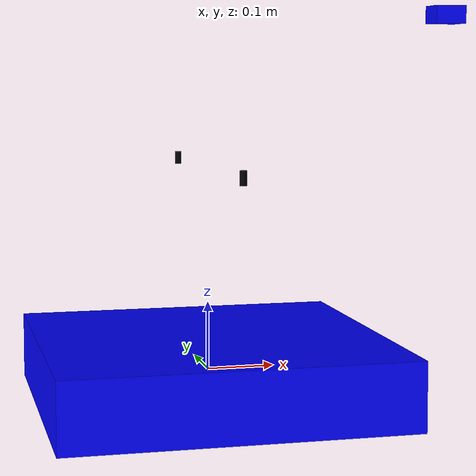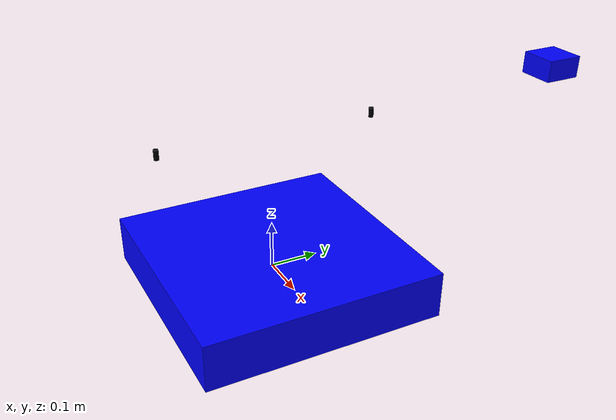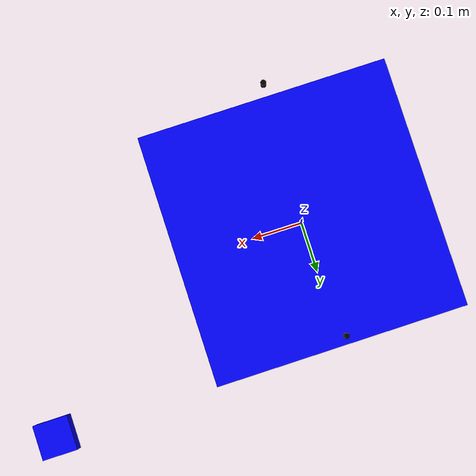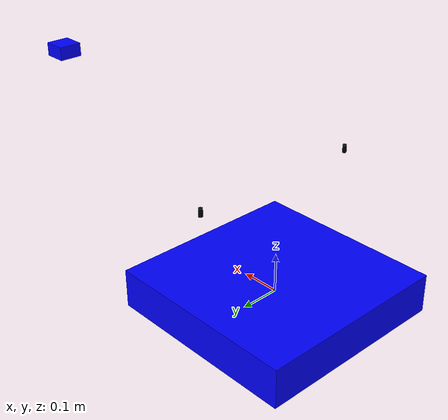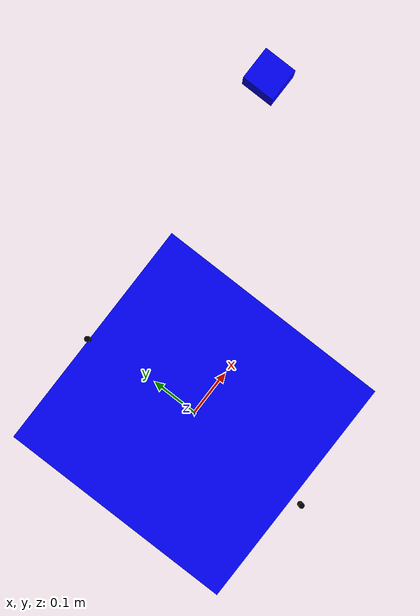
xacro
<?xml version="1.0"?>
<!-- Basic differential drive mobile base -->
<robot xmlns:xacro="http://www.ros.org/wiki/xacro" name="diffdrive_robot">
	<xacro:arg name="prefix" default="" />
	<xacro:arg name="use_mock_hardware" default="false" />

	<xacro:include filename="$(find nuri_humble_desc)/urdf/diffbot_description.urdf.xacro" />
	<xacro:include filename="$(find nuri_humble_desc)/urdf/diffbot.ros2_control.xacro" />
	<xacro:diffbot prefix="$(arg prefix)" />
	<xacro:diffbot_ros2_control
	name="DiffBot" prefix="$(arg prefix)" use_mock_hardware="$(arg use_mock_hardware)"/>

</robot>

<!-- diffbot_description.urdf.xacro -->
<robot xmlns:xacro="http://www.ros.org/wiki/xacro">
  <xacro:macro name="diffbot" params="prefix">

    <xacro:property name="wheel_separation" value="0.45" />
    <xacro:property name="wheel_radius" value="0.005" />

    <link name="${prefix}base_footprint" />
    <!-- 기본 링크 -->
    <link name="${prefix}base_link">
        <visual>
            <geometry>
                <box size="0.5 0.5 0.1" />
            </geometry>
            <material name="blue">
                <color rgba="0 0 1 1" />
            </material>
        </visual>
    </link>
    <joint name="${prefix}base_joint" type="fixed">
        <parent link="${prefix}base_footprint" />
        <child link="${prefix}base_link" />
        <origin xyz="0 0 0" rpy="0 0 0" />
    </joint>
    <!-- 왼쪽 바퀴 -->
    <link name="${prefix}wheel_left">
        <visual>
            <geometry>
                <cylinder radius="${wheel_radius}" length="0.02" />
            </geometry>
            <material name="blue">
                <color rgba="0 0 0 1" />
            </material>
        </visual>
    </link>
    <!-- 오른쪽 바퀴 -->
    <link name="${prefix}wheel_right">
        <visual>
            <geometry>
                <cylinder radius="${wheel_radius}" length="0.02" />
            </geometry>
            <material name="blue">
                <color rgba="0 0 0 1" />
            </material>
        </visual>
    </link>
    <!-- 왼쪽 바퀴 조인트 -->
    <joint name="${prefix}base_to_wheel_left" type="continuous">
        <parent link="${prefix}base_link" />
        <child link="${prefix}wheel_left" />
        <origin xyz="0 -${wheel_separation / 2} 0.3" rpy="0 0 0" />
        <axis xyz="0 1 0" />
    </joint>
    <!-- 오른쪽 바퀴 조인트 -->
    <joint name="${prefix}base_to_wheel_right" type="continuous">
        <parent link="${prefix}base_link" />
        <child link="${prefix}wheel_right" />
        <origin xyz="0 ${wheel_separation / 2} 0.3" rpy="0 0 0" />
        <axis xyz="0 1 0" />
    </joint>
    <link name="${prefix}base_scan">
        <visual>
            <origin xyz="0 0 -0.046" rpy="0 0 0" />
            <geometry>
                <box size="0.052 0.052 0.03" />
            </geometry>
            <material name="blue" />
        </visual>
    </link>
    <joint name="${prefix}scan_joint" type="fixed">
        <parent link="${prefix}base_link" />
        <child link="${prefix}base_scan" />
        <origin xyz="0.46 0.225 0.58" rpy="0 0 0" />
    </joint>
  </xacro:macro>
</robot>
